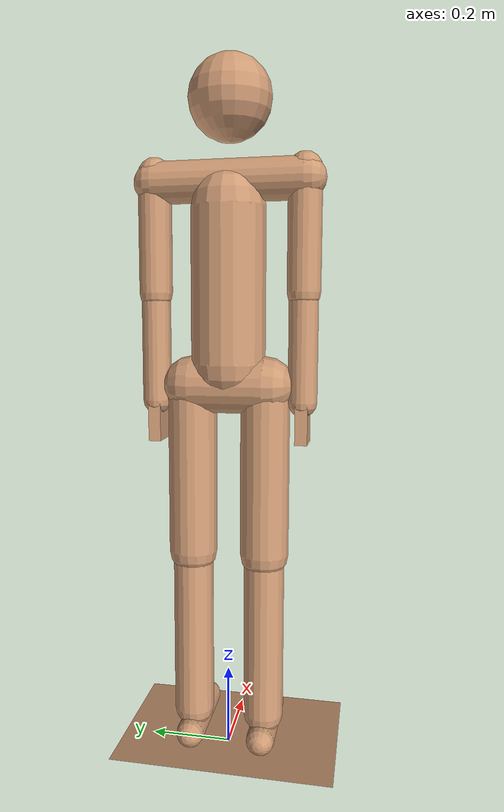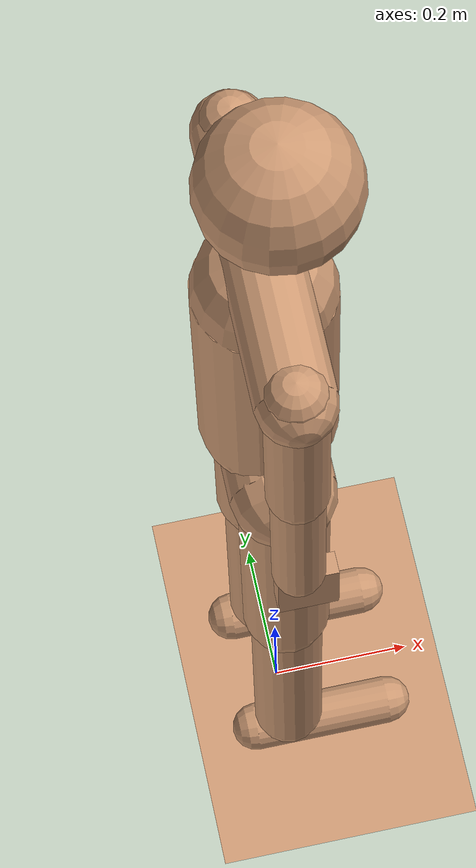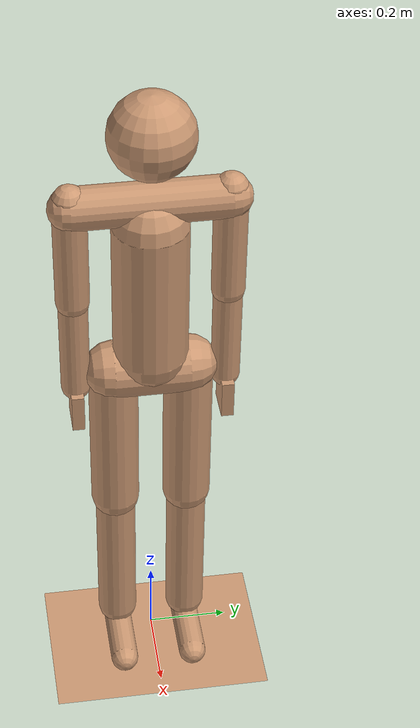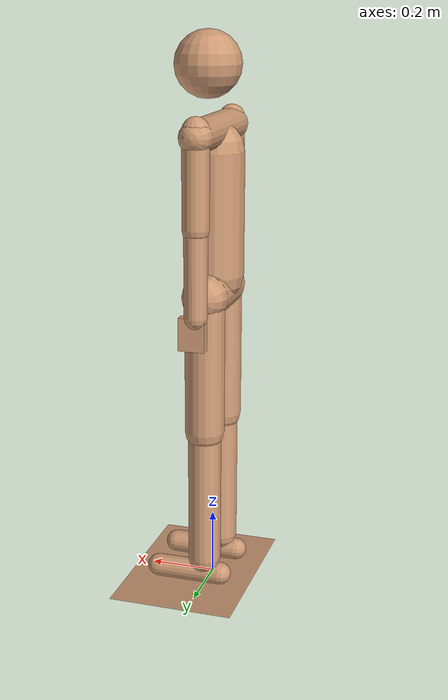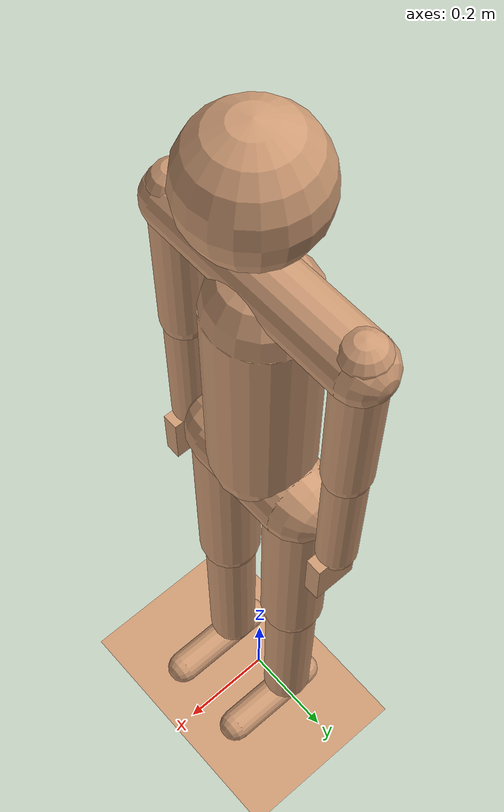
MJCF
<mujoco model="mp_humanoid">
  <compiler angle="degree"/>
  <option timestep="0.01"/>

  <visual>
    <global offwidth="1280" offheight="720"/>
  </visual>

  <default>
    <geom type="capsule" size="0.045" contype="0" conaffinity="0" rgba="0.8 0.6 0.45 1"/>
    <site size="0.02" rgba="1 0.2 0.2 1" group="3"/>
    <joint damping="1" armature="0.01"/>
  </default>

  <asset>
    <texture name="grid" type="2d" builtin="checker" rgb1="0.2 0.25 0.3" rgb2="0.3 0.35 0.4" width="512" height="512"/>
    <material name="grid" texture="grid" texrepeat="4 4" reflectance="0.1"/>
  </asset>

  <worldbody>
    <light pos="0 0 4" dir="0 0 -1" directional="true"/>
    <geom name="floor" type="plane" size="10 10 0.1" material="grid" contype="1" conaffinity="1"/>

    <body name="pelvis" pos="0 0 0.93">
      <freejoint name="root"/>
      <geom fromto="0 -0.09 0 0 0.09 0" size="0.07"/>
      <site name="mp_23" pos="0 0.09 0"/>
      <site name="mp_24" pos="0 -0.09 0"/>

      <body name="torso">
        <joint name="spine" type="ball"/>
        <geom fromto="0 0 0.05 0 0 0.42" size="0.09"/>
        <geom fromto="0 -0.18 0.48 0 0.18 0.48" size="0.05"/>
        <site name="mp_11" pos="0 0.18 0.50"/>
        <site name="mp_12" pos="0 -0.18 0.50"/>

        <body name="head" pos="0 0 0.55">
          <joint name="neck" type="ball"/>
          <geom type="sphere" pos="0.02 0 0.12" size="0.1"/>
          <site name="mp_0" pos="0.11 0 0.12"/>
          <site name="mp_7" pos="0.01 0.075 0.12"/>
          <site name="mp_8" pos="0.01 -0.075 0.12"/>
        </body>

        <!-- Left arm -->
        <body name="l_upper_arm" pos="0 0.18 0.50">
          <joint name="l_shoulder" type="ball"/>
          <geom fromto="0 0 0 0 0 -0.28" size="0.04"/>
          <body name="l_forearm" pos="0 0 -0.28">
            <joint name="l_elbow" type="hinge" axis="0 -1 0" range="-5 150"/>
            <site name="mp_13"/>
            <geom fromto="0 0 0 0 0 -0.26" size="0.035"/>
            <body name="l_hand" pos="0 0 -0.26">
              <joint name="l_wrist" type="ball"/>
              <site name="mp_15"/>
              <geom type="box" pos="0.01 0 -0.05" size="0.04 0.015 0.05"/>
              <site name="mp_17" pos="-0.02 0 -0.08"/>
              <site name="mp_19" pos="0.03 0 -0.09"/>
              <site name="mp_21" pos="0.05 0 -0.04"/>
            </body>
          </body>
        </body>

        <!-- Right arm -->
        <body name="r_upper_arm" pos="0 -0.18 0.50">
          <joint name="r_shoulder" type="ball"/>
          <geom fromto="0 0 0 0 0 -0.28" size="0.04"/>
          <body name="r_forearm" pos="0 0 -0.28">
            <joint name="r_elbow" type="hinge" axis="0 -1 0" range="-5 150"/>
            <site name="mp_14"/>
            <geom fromto="0 0 0 0 0 -0.26" size="0.035"/>
            <body name="r_hand" pos="0 0 -0.26">
              <joint name="r_wrist" type="ball"/>
              <site name="mp_16"/>
              <geom type="box" pos="0.01 0 -0.05" size="0.04 0.015 0.05"/>
              <site name="mp_18" pos="-0.02 0 -0.08"/>
              <site name="mp_20" pos="0.03 0 -0.09"/>
              <site name="mp_22" pos="0.05 0 -0.04"/>
            </body>
          </body>
        </body>
      </body>

      <!-- Left leg -->
      <body name="l_thigh" pos="0 0.09 0">
        <joint name="l_hip" type="ball"/>
        <geom fromto="0 0 0 0 0 -0.42" size="0.06"/>
        <body name="l_shin" pos="0 0 -0.42">
          <joint name="l_knee" type="hinge" axis="0 1 0" range="-5 150"/>
          <site name="mp_25"/>
          <geom fromto="0 0 0 0 0 -0.42" size="0.05"/>
          <body name="l_foot" pos="0 0 -0.42">
            <joint name="l_ankle" type="ball"/>
            <site name="mp_27"/>
            <geom fromto="-0.05 0 -0.05 0.15 0 -0.05" size="0.035"/>
            <site name="mp_29" pos="-0.06 0 -0.06"/>
            <site name="mp_31" pos="0.16 0 -0.06"/>
          </body>
        </body>
      </body>

      <!-- Right leg -->
      <body name="r_thigh" pos="0 -0.09 0">
        <joint name="r_hip" type="ball"/>
        <geom fromto="0 0 0 0 0 -0.42" size="0.06"/>
        <body name="r_shin" pos="0 0 -0.42">
          <joint name="r_knee" type="hinge" axis="0 1 0" range="-5 150"/>
          <site name="mp_26"/>
          <geom fromto="0 0 0 0 0 -0.42" size="0.05"/>
          <body name="r_foot" pos="0 0 -0.42">
            <joint name="r_ankle" type="ball"/>
            <site name="mp_28"/>
            <geom fromto="-0.05 0 -0.05 0.15 0 -0.05" size="0.035"/>
            <site name="mp_30" pos="-0.06 0 -0.06"/>
            <site name="mp_32" pos="0.16 0 -0.06"/>
          </body>
        </body>
      </body>
    </body>
  </worldbody>
</mujoco>
